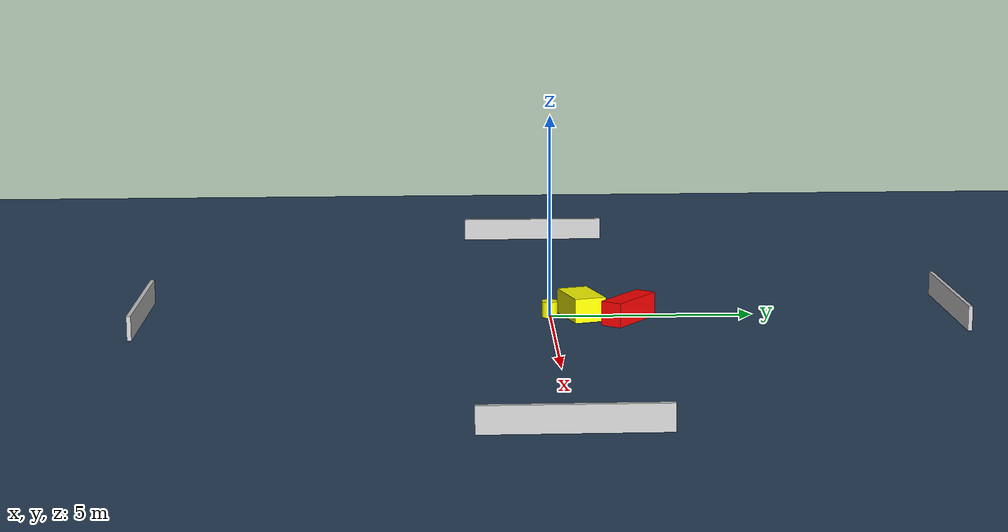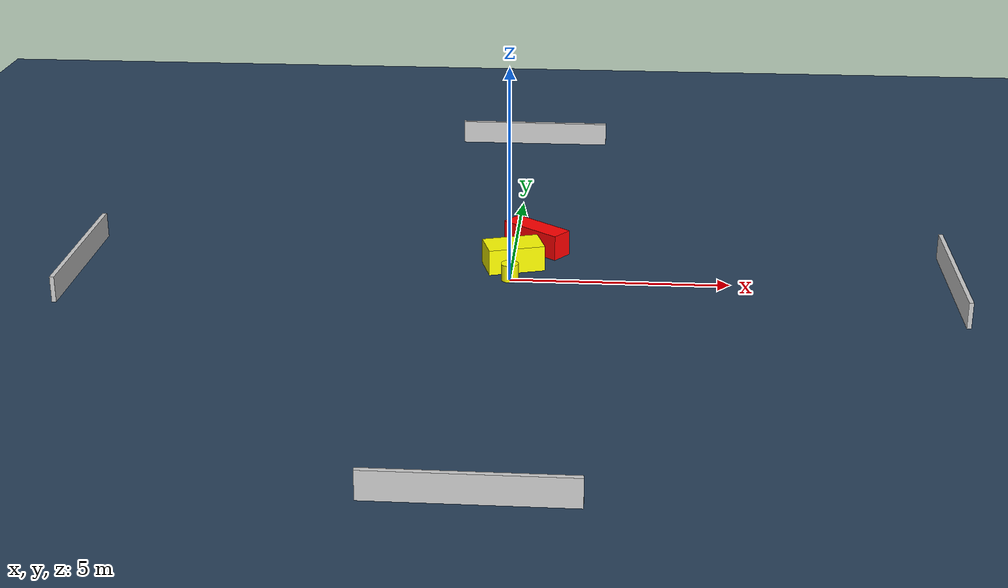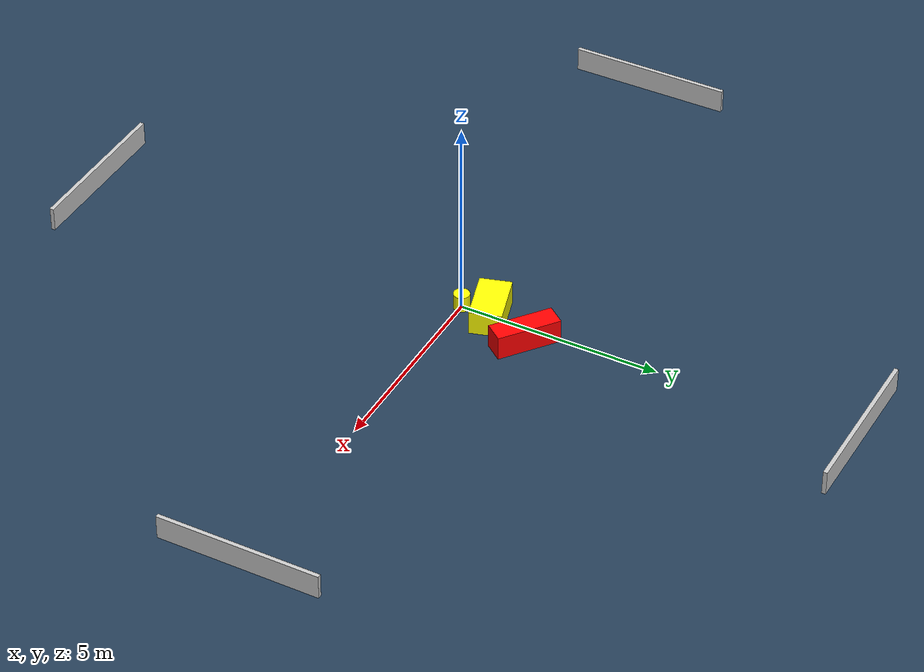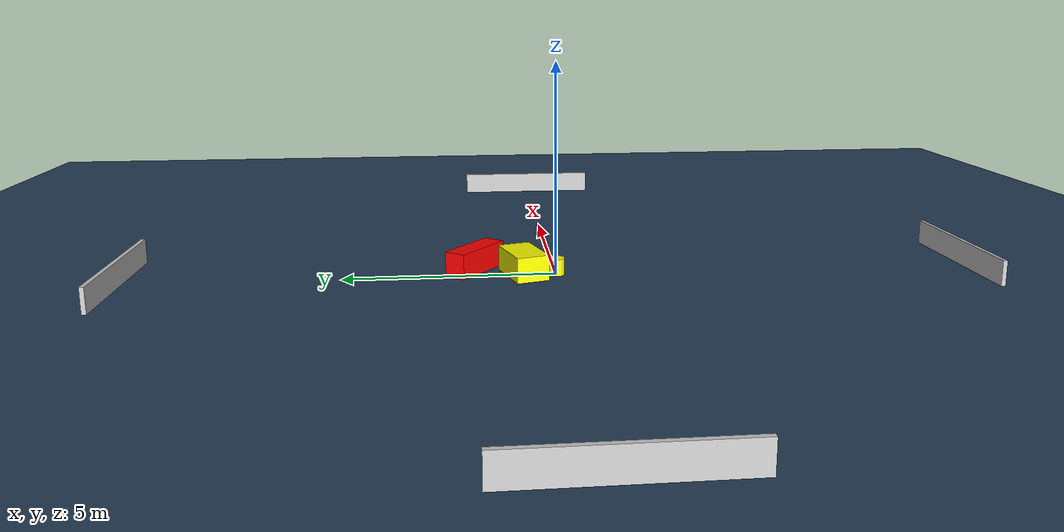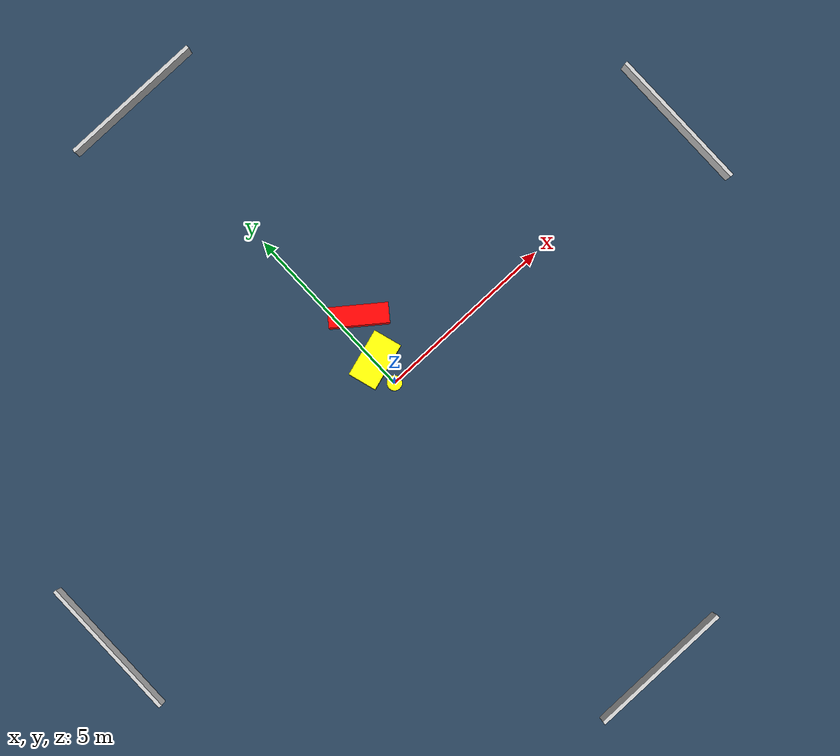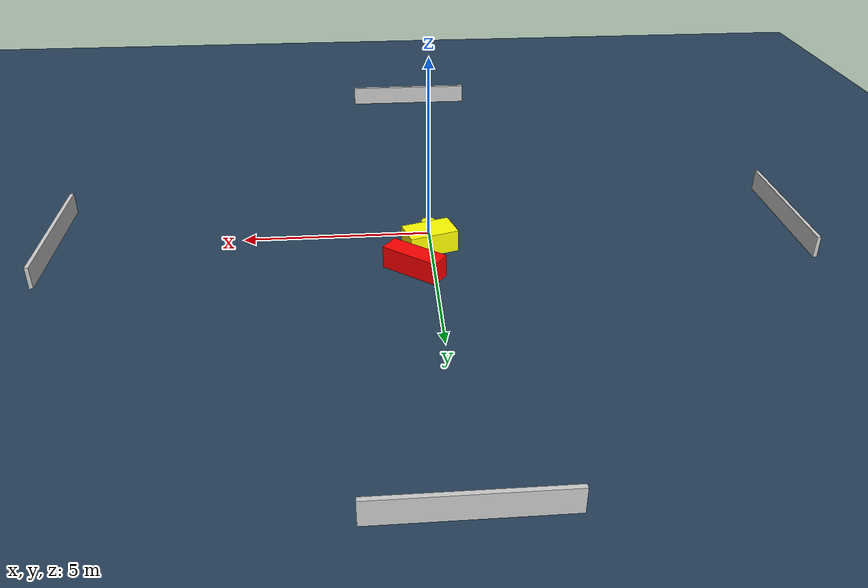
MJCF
<?xml version="1.0" ?>
<mujoco model="generated_environment">
  <option timestep="0.01" integrator="RK4" cone="elliptic"/>
  <default>
    <geom density="1"/>
  </default>
  <asset>
    <texture builtin="gradient" height="3072" name="skybox" rgb1="0.3 0.5 0.7" rgb2="0 0 0" type="skybox" width="512"/>
    <texture builtin="checker" height="300" name="groundplane" rgb1="0.2 0.3 0.4" rgb2="0.1 0.2 0.3" type="2d" width="300"/>
    <material name="groundplane" reflectance="0.2" texrepeat="5 5" texture="groundplane"/>
  </asset>
  <worldbody>
    <light dir="0 0 -1" directional="true" pos="0 0 1.5"/>
    <geom condim="3" friction="0.5 0.005 0.001" material="groundplane" name="floor" pos="0 0 0" size="0 0 0.05" type="plane"/>
    <body name="walls">
      <geom name="wall_1" condim="4" pos="-10.0 0.0 0.3" rgba="0.800000011920929 0.800000011920929 0.800000011920929 1.0" size="0.05 2.0 0.3" type="box"/>
      <geom name="wall_2" condim="4" pos="10.0 0.0 0.3" rgba="0.800000011920929 0.800000011920929 0.800000011920929 1.0" size="0.05 2.0 0.3" type="box"/>
      <geom name="wall_3" condim="4" pos="0.0 -10.0 0.3" rgba="0.800000011920929 0.800000011920929 0.800000011920929 1.0" size="2.0 0.05 0.3" type="box"/>
      <geom name="wall_4" condim="4" pos="0.0 10.0 0.3" rgba="0.800000011920929 0.800000011920929 0.800000011920929 1.0" size="2.0 0.05 0.3" type="box"/>
    </body>
    <body name="robot">
      <joint name="joint_x" type="slide" pos="0 0 0" axis="1 0 0"/>
      <joint name="joint_y" type="slide" pos="0 0 0" axis="0 1 0"/>
      <geom name="robot" type="cylinder" pos="0.0 0.0 0.2" size="0.2 0.2 0.0" mass="5.0" friction="1.0 0.005 0.0001" condim="4" rgba="1.0 1.0 0.0 1.0"/>
    </body>
    <body name="obstacle_1_movable">
      <geom name="obstacle_1_movable" condim="4" pos="0.030267846938985148 0.7732766308501379 0.3" euler="0 0 286.81653900338307" friction="0.0 0.005 0.001" rgba="1.0 1.0 0.0 1.0" size="0.39231864407573713 0.6589862678820034 0.3" type="box" mass="0.1"/>
      <joint type="free"/>
    </body>
    <body name="obstacle_2_static">
      <geom name="obstacle_2_static" condim="4" pos="0.50548963194972 1.9062066756008358 0.3" euler="0 0 142.52549705973698" friction="0.0 0.005 0.001" rgba="1.0 0.0 0.0 1.0" size="0.791418640767265 0.26575316156012674 0.3" type="box"/>
    </body>
  </worldbody>
  <actuator>
    <motor name="actuator_x" joint="joint_x" gear="1" ctrlrange="-1 1"/>
    <motor name="actuator_y" joint="joint_y" gear="1" ctrlrange="-1 1"/>
  </actuator>
</mujoco>
